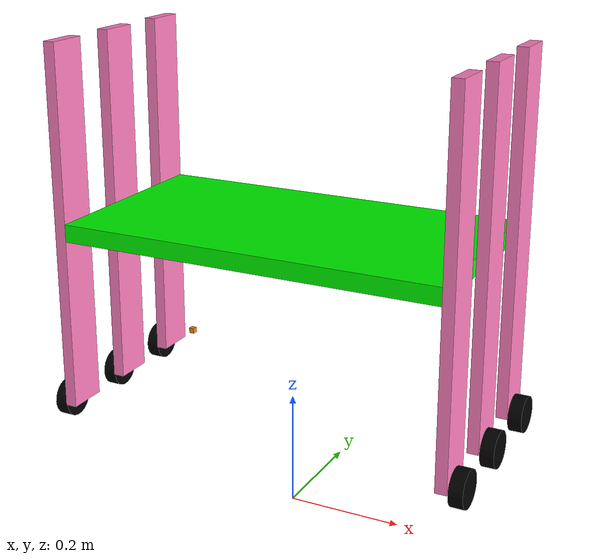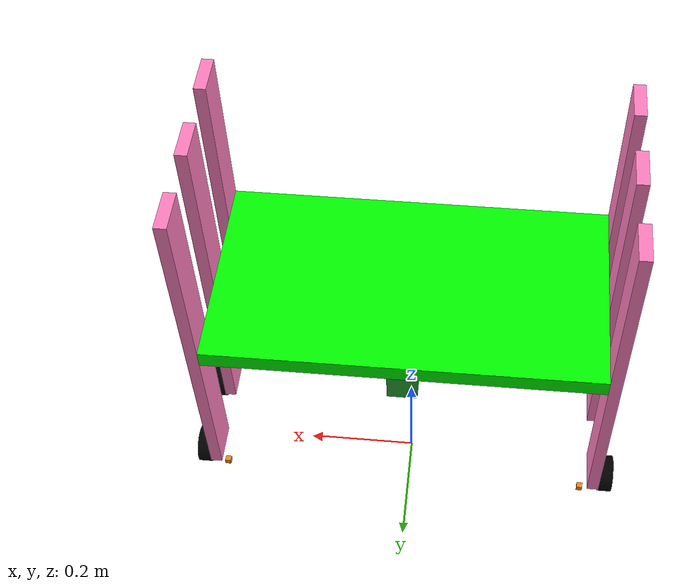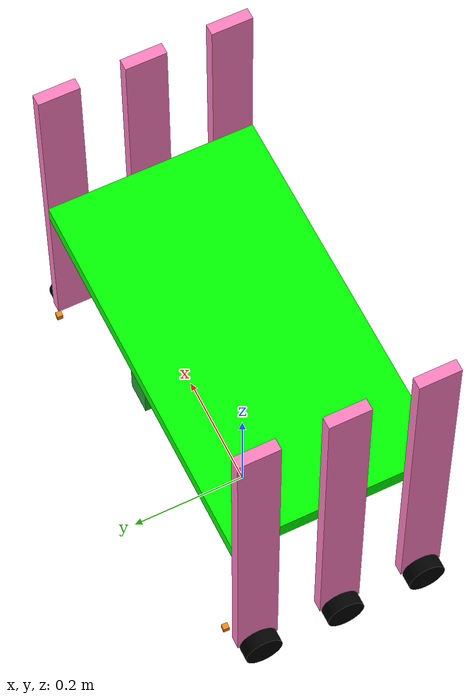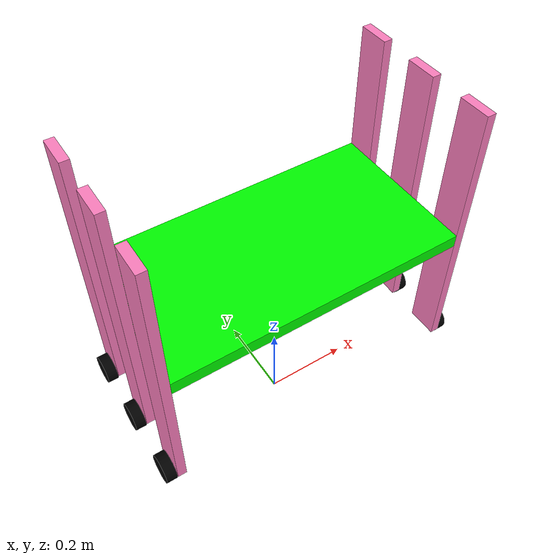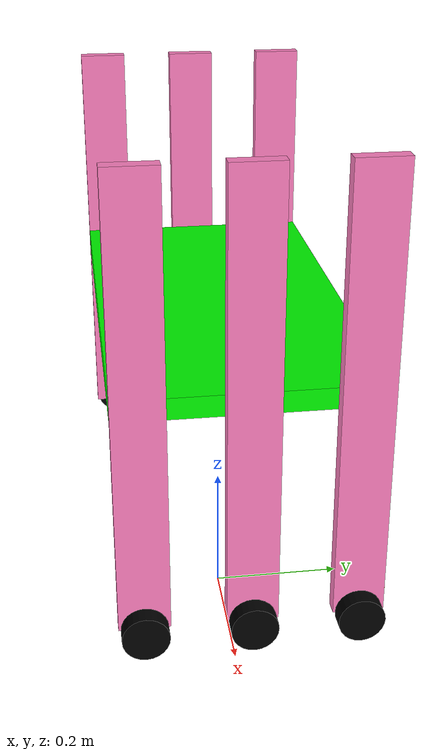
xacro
<?xml version='1.0'?>

<robot name="Rover" xmlns:xacro="http://www.ros.org/wiki/xacro">

  <gazebo>
        <plugin name="gazebo_ros_control" filename="libgazebo_ros_control.so">
        </plugin>
</gazebo>

<link name="world"/>

<link name="base_link">

        <inertial>
	<origin xyz="0 0 0" rpy="0 0 0"/>
            <mass value="19.0"/>
            <inertia ixx=" 0.206625" iyy="0.691125" izz=" 0.8949" ixy="0" ixz="0" iyz="0"/>
        </inertial>

        <collision>
	<origin xyz="0 0 0" rpy="0 0 0"/>
            <geometry>

                <box size="0.66 0.36 0.03"/>
            </geometry>

        </collision>

        <visual>
	<origin xyz="0 0 0" rpy="0 0 0"/>
            <geometry>
                <box size="0.66 0.36 0.03"/>
            </geometry>

            <material name="silver">
                <color rgba="0 1 0 1"/>
            </material>
        </visual>

</link>

<gazebo reference="base_link">
        <material>Gazebo/Green</material>
	<kp>1000000.0</kp>
        <kd>1000000.0</kd>
        <mu1>0.1</mu1>
        <mu2>0.1</mu2>
</gazebo>

<joint name="world_Base_Link" type="prismatic">
    	<parent link="world"/>
    	<child link="base_link"/>
        <origin xyz="0.0 0.0 0.5" rpy="0 0 0"/>
        <limit lower="-100.0" upper="100.0" effort="10.0" velocity="0.5"/>
        <axis xyz="0 1 0"/>
</joint>
<transmission name="tran_world_base_link">
        <type>transmission_interface/SimpleTransmission</type>
       <actuator name="motor1">
          <mechanicalReduction>1</mechanicalReduction>
        </actuator>
        <joint name="world_Base_Link">
          <hardwareInterface>hardware_interface/PositionJointInterface</hardwareInterface>
        </joint>
</transmission>

<link name="leg1">

      <inertial>
	<origin xyz="0.01 0 0" rpy="0 0 0"/>
        <mass value="2.4"/>
        <inertia ixx="0.08036" iyy="0.07946" izz=" 0.00106" ixy="0" ixz="0" iyz="0"/>
      </inertial>

      <collision>
	<origin xyz="0.01 0 0" rpy="0 0 0"/>
        <geometry>
            <box size="0.02 0.07 0.63"/>
        </geometry>

      </collision>

      <visual>
	  <origin xyz="0.01 0 0" rpy="0 0 0"/>
          <geometry>
              <box size="0.02 0.07 0.63"/>
          </geometry>

          <material name="silver">
              <color rgba="1 0.5 0.75 1"/>
          </material>
      </visual>

</link>

<gazebo reference="leg1">
        <material>Gazebo/Red</material>
	<kp>1000000.0</kp>
        <kd>1000000.0</kd>
        <mu1>0.1</mu1>
        <mu2>0.1</mu2>
</gazebo>

<joint name="Base_Link_Leg_1" type="prismatic">
    	<parent link="base_link"/>
    	<child link="leg1"/>
        <origin xyz="0.33 0.145 0" rpy="0 0 0"/>
        <limit lower="-0.35" upper="0.35" effort="10.0" velocity="1.0"/>
        <axis xyz="0 0 1"/>
</joint>

<transmission name="tran1">
        <type>transmission_interface/SimpleTransmission</type>
       <actuator name="motor1">
          <mechanicalReduction>1</mechanicalReduction>
        </actuator>
        <joint name="Base_Link_Leg_1">
          <hardwareInterface>hardware_interface/PositionJointInterface</hardwareInterface>
        </joint>
   </transmission>

<link name="wheel1">

        <inertial>
	<origin xyz="0 0 0.012" rpy="0 0 0"/>
            <mass value="0.21"/>
            <inertia ixx="6.2708e-5" iyy="6.2708e-5" izz="0.000125" ixy="0" ixz="0" iyz="0"/>
        </inertial>
        <collision>
	<origin xyz="0 0 0.012" rpy="0 0 0"/>
            <geometry>
                <cylinder length="0.024" radius="0.032"/>
            </geometry>
        </collision>

        <visual>
	<origin xyz="0 0 0.012" rpy="0 0 0"/>
            <geometry>
                <cylinder length="0.024" radius="0.032"/>
            </geometry>
            <material name="black">
                <color rgba="0 0 0 1"/>
            </material>
        </visual>
</link>

<gazebo reference="wheel1">
        <material>Gazebo/Green</material>
	<kp>1000000.0</kp>
        <kd>1000000.0</kd>
        <mu1>100.0</mu1>
        <mu2>100.0</mu2>
</gazebo>

<joint name="leg1_wheel1" type="continuous">
    	<parent link="leg1"/>
    	<child link="wheel1"/>
    	<origin xyz="0.02 0 -0.315" rpy="0 1.5708 0"/>
        <limit effort="10.0" velocity="10.0"/>
        <axis xyz="0 0 1"/>
</joint>

<transmission name="tran3">
        <type>transmission_interface/SimpleTransmission</type>
        <joint name="leg1_wheel1">
            <hardwareInterface>EffortJointInterface</hardwareInterface>
        </joint>
        <actuator name="motor1">
            <hardwareInterface>EffortJointInterface</hardwareInterface>
            <mechanicalReduction>1</mechanicalReduction>
        </actuator>
</transmission>

<!-- part 22222222222222222 -->

<link name="leg2">

      <inertial>
	<origin xyz="-0.01 0 0" rpy="0 0 0"/>
        <mass value="2.4"/>
        <inertia ixx="0.08036" iyy="0.07946" izz=" 0.00106" ixy="0" ixz="0" iyz="0"/>
      </inertial>

      <collision>
	<origin xyz="-0.01 0 0" rpy="0 0 0"/>
        <geometry>
            <box size="0.02 0.07 0.63"/>
        </geometry>

      </collision>

      <visual>
	  <origin xyz="-0.01 0 0" rpy="0 0 0"/>
          <geometry>
              <box size="0.02 0.07 0.63"/>
          </geometry>

          <material name="silver">
              <color rgba="1 0.5 0.75 1"/>
          </material>
      </visual>

</link>

<gazebo reference="leg2">
        <material>Gazebo/Red</material>
	<kp>1000000.0</kp>
        <kd>1000000.0</kd>
        <mu1>0.1</mu1>
        <mu2>0.1</mu2>
</gazebo>

<joint name="Base_Link_Leg_2" type="prismatic">
    	<parent link="base_link"/>
    	<child link="leg2"/>
        <origin xyz="-0.33 0.145 0" rpy="0 0 0"/>
        <limit lower="-0.35" upper="0.35" effort="10.0" velocity="1.0"/>
        <axis xyz="0 0 1"/>
</joint>

<transmission name="tran2">
        <type>transmission_interface/SimpleTransmission</type>
       <actuator name="motor1">
          <mechanicalReduction>1</mechanicalReduction>
        </actuator>
        <joint name="Base_Link_Leg_2">
          <hardwareInterface>hardware_interface/PositionJointInterface</hardwareInterface>
        </joint>
   </transmission>

<link name="wheel2">

        <inertial>
	<origin xyz="0 0 -0.012" rpy="0 0 0"/>
            <mass value="0.21"/>
            <inertia ixx="6.2708e-5" iyy="6.2708e-5" izz="0.000125" ixy="0" ixz="0" iyz="0"/>
        </inertial>
        <collision>
	<origin xyz="0 0 -0.012" rpy="0 0 0"/>
            <geometry>
                <cylinder length="0.024" radius="0.032"/>
            </geometry>
        </collision>

        <visual>
	<origin xyz="0 0 -0.012" rpy="0 0 0"/>
            <geometry>
                <cylinder length="0.024" radius="0.032"/>
            </geometry>
            <material name="black">
                <color rgba="0 0 0 1"/>
            </material>
        </visual>
</link>

<gazebo reference="wheel2">
        <material>Gazebo/Green</material>
	<kp>1000000.0</kp>
        <kd>1000000.0</kd>
        <mu1>0.1</mu1>
        <mu2>0.1</mu2>
</gazebo>

<joint name="leg2_wheel2" type="continuous">
    	<parent link="leg2"/>
    	<child link="wheel2"/>
    	<origin xyz="-0.02 0 -0.315" rpy="0 1.5708 0"/>
        <limit effort="10.0" velocity="10.0"/>
        <axis xyz="0 0 1"/>
</joint>

<transmission name="tran4">
        <type>transmission_interface/SimpleTransmission</type>
        <joint name="leg2_wheel2">
            <hardwareInterface>EffortJointInterface</hardwareInterface>
        </joint>
        <actuator name="motor1">
            <hardwareInterface>EffortJointInterface</hardwareInterface>
            <mechanicalReduction>1</mechanicalReduction>
        </actuator>
</transmission>

<!-- part 333333333333333 -->
<link name="leg3">

      <inertial>
	<origin xyz="0.01 0 0" rpy="0 0 0"/>
        <mass value="2.4"/>
        <inertia ixx="0.08036" iyy="0.07946" izz=" 0.00106" ixy="0" ixz="0" iyz="0"/>
      </inertial>

      <collision>
	<origin xyz="0.01 0 0" rpy="0 0 0"/>
        <geometry>
            <box size="0.02 0.07 0.63"/>
        </geometry>

      </collision>

      <visual>
	  <origin xyz="0.01 0 0" rpy="0 0 0"/>
          <geometry>
              <box size="0.02 0.07 0.63"/>
          </geometry>

          <material name="silver">
              <color rgba="1 0.5 0.75 1"/>
          </material>
      </visual>

</link>

<gazebo reference="leg3">
        <material>Gazebo/Red</material>
	<kp>1000000.0</kp>
        <kd>1000000.0</kd>
        <mu1>0.1</mu1>
        <mu2>0.1</mu2>
</gazebo>

<joint name="Base_Link_Leg_3" type="prismatic">
    	<parent link="base_link"/>
    	<child link="leg3"/>
        <origin xyz="0.33 0 0" rpy="0 0 0"/>
        <limit lower="-0.35" upper="0.35" effort="10.0" velocity="1.0"/>
        <axis xyz="0 0 1"/>
</joint>

<transmission name="tran33">
        <type>transmission_interface/SimpleTransmission</type>
       <actuator name="motor1">
          <mechanicalReduction>1</mechanicalReduction>
        </actuator>
        <joint name="Base_Link_Leg_3">
          <hardwareInterface>hardware_interface/PositionJointInterface</hardwareInterface>
        </joint>
   </transmission>
<link name="wheel3">

        <inertial>
	<origin xyz="0 0 0.012" rpy="0 0 0"/>
            <mass value="0.21"/>
            <inertia ixx="6.2708e-5" iyy="6.2708e-5" izz="0.000125" ixy="0" ixz="0" iyz="0"/>
        </inertial>
        <collision>
	<origin xyz="0 0 0.012" rpy="0 0 0"/>
            <geometry>
                <cylinder length="0.024" radius="0.032"/>
            </geometry>
        </collision>

        <visual>
	<origin xyz="0 0 0.012" rpy="0 0 0"/>
            <geometry>
                <cylinder length="0.024" radius="0.032"/>
            </geometry>
            <material name="black">
                <color rgba="0 0 0 1"/>
            </material>
        </visual>
</link>

<gazebo reference="wheel3">
        <material>Gazebo/Green</material>
	<kp>1000000.0</kp>
        <kd>1000000.0</kd>
        <mu1>0.1</mu1>
        <mu2>0.1</mu2>
</gazebo>

<joint name="leg3_wheel3" type="continuous">
    	<parent link="leg3"/>
    	<child link="wheel3"/>
    	<origin xyz="0.02 0 -0.315" rpy="0 1.5708 0"/>
        <limit effort="10.0" velocity="10.0"/>
        <axis xyz="0 0 1"/>
</joint>
<!-- part 44444444444444444 -->
<link name="leg4">

      <inertial>
	<origin xyz="-0.01 0 0" rpy="0 0 0"/>
        <mass value="2.4"/>
        <inertia ixx="0.08036" iyy="0.07946" izz=" 0.00106" ixy="0" ixz="0" iyz="0"/>
      </inertial>

      <collision>
	<origin xyz="-0.01 0 0" rpy="0 0 0"/>
        <geometry>
            <box size="0.02 0.07 0.63"/>
        </geometry>

      </collision>

      <visual>
	  <origin xyz="-0.01 0 0" rpy="0 0 0"/>
          <geometry>
              <box size="0.02 0.07 0.63"/>
          </geometry>

          <material name="silver">
              <color rgba="1 0.5 0.75 1"/>
          </material>
      </visual>

</link>

<gazebo reference="leg4">
        <material>Gazebo/Red</material>
	<kp>1000000.0</kp>
        <kd>1000000.0</kd>
        <mu1>0.1</mu1>
        <mu2>0.1</mu2>
</gazebo>

<joint name="Base_Link_Leg_4" type="prismatic">
    	<parent link="base_link"/>
    	<child link="leg4"/>
        <origin xyz="-0.33 0 0" rpy="0 0 0"/>
        <limit lower="-0.35" upper="0.35" effort="10.0" velocity="1.0"/>
        <axis xyz="0 0 1"/>
</joint>

<transmission name="tran44">
        <type>transmission_interface/SimpleTransmission</type>
       <actuator name="motor1">
          <mechanicalReduction>1</mechanicalReduction>
        </actuator>
        <joint name="Base_Link_Leg_4">
          <hardwareInterface>hardware_interface/PositionJointInterface</hardwareInterface>
        </joint>
   </transmission>

<link name="wheel4">

        <inertial>
	<origin xyz="0 0 -0.012" rpy="0 0 0"/>
            <mass value="0.21"/>
            <inertia ixx="6.2708e-5" iyy="6.2708e-5" izz="0.000125" ixy="0" ixz="0" iyz="0"/>
        </inertial>
        <collision>
	<origin xyz="0 0 -0.012" rpy="0 0 0"/>
            <geometry>
                <cylinder length="0.024" radius="0.032"/>
            </geometry>
        </collision>

        <visual>
	<origin xyz="0 0 -0.012" rpy="0 0 0"/>
            <geometry>
                <cylinder length="0.024" radius="0.032"/>
            </geometry>
            <material name="black">
                <color rgba="0 0 0 1"/>
            </material>
        </visual>
</link>

<gazebo reference="wheel4">
        <material>Gazebo/Green</material>
	<kp>1000000.0</kp>
        <kd>1000000.0</kd>
        <mu1>0.1</mu1>
        <mu2>0.1</mu2>
</gazebo>

<joint name="leg4_wheel4" type="continuous">
    	<parent link="leg4"/>
    	<child link="wheel4"/>
    	<origin xyz="-0.02 0 -0.315" rpy="0 1.5708 0"/>
        <limit effort="10.0" velocity="10.0"/>
        <axis xyz="0 0 1"/>
</joint>

<!-- part 55555555 -->
<link name="leg5">

      <inertial>
	<origin xyz="0.01 0 0" rpy="0 0 0"/>
        <mass value="2.4"/>
        <inertia ixx="0.08036" iyy="0.07946" izz=" 0.00106" ixy="0" ixz="0" iyz="0"/>
      </inertial>

      <collision>
	<origin xyz="0.01 0 0" rpy="0 0 0"/>
        <geometry>
            <box size="0.02 0.07 0.63"/>
        </geometry>

      </collision>

      <visual>
	  <origin xyz="0.01 0 0" rpy="0 0 0"/>
          <geometry>
              <box size="0.02 0.07 0.63"/>
          </geometry>

          <material name="silver">
              <color rgba="1 0.5 0.75 1"/>
          </material>
      </visual>

</link>

<gazebo reference="leg5">
        <material>Gazebo/Red</material>
	<kp>1000000.0</kp>
        <kd>1000000.0</kd>
        <mu1>0.1</mu1>
        <mu2>0.1</mu2>
</gazebo>

<joint name="Base_Link_Leg_5" type="prismatic">
    	<parent link="base_link"/>
    	<child link="leg5"/>
        <origin xyz="0.33 -0.145 0" rpy="0 0 0"/>
        <limit lower="-0.35" upper="0.35" effort="10.0" velocity="1.0"/>
        <axis xyz="0 0 1"/>
</joint>

<transmission name="tran55">
        <type>transmission_interface/SimpleTransmission</type>
       <actuator name="motor1">
          <mechanicalReduction>1</mechanicalReduction>
        </actuator>
        <joint name="Base_Link_Leg_5">
          <hardwareInterface>hardware_interface/PositionJointInterface</hardwareInterface>
        </joint>
   </transmission>

<link name="wheel5">

        <inertial>
	<origin xyz="0 0 0.012" rpy="0 0 0"/>
            <mass value="0.21"/>
            <inertia ixx="6.2708e-5" iyy="6.2708e-5" izz="0.000125" ixy="0" ixz="0" iyz="0"/>
        </inertial>
        <collision>
	<origin xyz="0 0 0.012" rpy="0 0 0"/>
            <geometry>
                <cylinder length="0.024" radius="0.032"/>
            </geometry>
        </collision>

        <visual>
	<origin xyz="0 0 0.012" rpy="0 0 0"/>
            <geometry>
                <cylinder length="0.024" radius="0.032"/>
            </geometry>
            <material name="black">
                <color rgba="0 0 0 1"/>
            </material>
        </visual>
</link>

<gazebo reference="wheel5">
        <material>Gazebo/Green</material>
	<kp>1000000.0</kp>
        <kd>1000000.0</kd>
        <mu1>0.1</mu1>
        <mu2>0.1</mu2>
</gazebo>

<joint name="leg5_wheel5" type="continuous">
    	<parent link="leg5"/>
    	<child link="wheel5"/>
    	<origin xyz="0.02 0 -0.315" rpy="0 1.5708 0"/>
        <limit effort="10.0" velocity="10.0"/>
        <axis xyz="0 0 1"/>
</joint>

<transmission name="tran66">
        <type>transmission_interface/SimpleTransmission</type>
       <actuator name="motor1">
          <mechanicalReduction>1</mechanicalReduction>
        </actuator>
        <joint name="Base_Link_Leg_6">
          <hardwareInterface>hardware_interface/PositionJointInterface</hardwareInterface>
        </joint>
   </transmission>

<!-- part 666666666666 -->
<link name="leg6">

      <inertial>
	<origin xyz="-0.01 0 0" rpy="0 0 0"/>
        <mass value="2.4"/>
        <inertia ixx="0.08036" iyy="0.07946" izz=" 0.00106" ixy="0" ixz="0" iyz="0"/>
      </inertial>

      <collision>
	<origin xyz="-0.01 0 0" rpy="0 0 0"/>
        <geometry>
            <box size="0.02 0.07 0.63"/>
        </geometry>

      </collision>

      <visual>
	  <origin xyz="-0.01 0 0" rpy="0 0 0"/>
          <geometry>
              <box size="0.02 0.07 0.63"/>
          </geometry>

          <material name="silver">
              <color rgba="1 0.5 0.75 1"/>
          </material>
      </visual>

</link>

<gazebo reference="leg6">
        <material>Gazebo/Red</material>
	<kp>1000000.0</kp>
        <kd>1000000.0</kd>
        <mu1>0.1</mu1>
        <mu2>0.1</mu2>
</gazebo>

<joint name="Base_Link_Leg_6" type="prismatic">
    	<parent link="base_link"/>
    	<child link="leg6"/>
        <origin xyz="-0.33 -0.145 0" rpy="0 0 0"/>
        <limit lower="-0.35" upper="0.35" effort="10.0" velocity="1.0"/>
        <axis xyz="0 0 1"/>
</joint>
<link name="wheel6">

        <inertial>
	<origin xyz="0 0 -0.012" rpy="0 0 0"/>
            <mass value="0.21"/>
            <inertia ixx="6.2708e-5" iyy="6.2708e-5" izz="0.000125" ixy="0" ixz="0" iyz="0"/>
        </inertial>
        <collision>
	<origin xyz="0 0 -0.012" rpy="0 0 0"/>
            <geometry>
                <cylinder length="0.024" radius="0.032"/>
            </geometry>
        </collision>

        <visual>
	<origin xyz="0 0 -0.012" rpy="0 0 0"/>
            <geometry>
                <cylinder length="0.024" radius="0.032"/>
            </geometry>
            <material name="black">
                <color rgba="0 0 0 1"/>
            </material>
        </visual>
</link>

<gazebo reference="wheel6">
        <material>Gazebo/Green</material>
	<kp>1000000.0</kp>
        <kd>1000000.0</kd>
        <mu1>0.1</mu1>
        <mu2>0.1</mu2>
</gazebo>

<joint name="leg6_wheel6" type="continuous">
    	<parent link="leg6"/>
    	<child link="wheel6"/>
    	<origin xyz="-0.02 0 -0.315" rpy="0 1.5708 0"/>
        <limit effort="10.0" velocity="10.0"/>
        <axis xyz="0 0 1"/>
</joint>

<!-- camera link stair climber -->
    <link name="camera_link">
        <!-- Inertial for gazebo to take it into account, Put 1gr weight -->
        <inertial>
            <origin xyz="0 0 0" rpy="0 0 0"/>
            <mass value="0.001" />
            <inertia ixx="9.1875e-09" ixy="0.0" ixz="0.0" iyy="9.1875e-09" iyz="0.0" izz="1.378125e-08"/>
        </inertial>
		<visual>
            <origin rpy="0.0 0 0" xyz="0 0 0"/>
            <geometry>
                <box size="0.05 0.05 0.05"/>
            </geometry>
            <material name="green"/>
        </visual>
	</link>

    <gazebo reference="camera_link">
        <material>Gazebo/Orange</material>
    </gazebo>

    <joint name="head_camera_joint" type="fixed">
        <parent link="base_link"/>
        <child link="camera_link"/>
        <origin xyz="0 0.155 -0.04" rpy="0 0 0"/>
    </joint>

    <!-- camera -->
  <gazebo reference="camera_link">
    <sensor type="camera" name="camera1">
      <update_rate>10.0</update_rate>
      <camera name="head">

          <pose>0 0 0 0 0 1.57</pose>

        <horizontal_fov>1.3962634</horizontal_fov>
        <image>
          <width>400</width>
          <height>400</height>
          <format>R8G8B8</format>
        </image>
        <clip>
          <near>0.01</near>
          <far>100</far>
        </clip>
        <noise>
          <type>gaussian</type>
          <stddev>0.007</stddev>
        </noise>
      </camera>
      <plugin name="camera_controller" filename="libgazebo_ros_camera.so">
        <alwaysOn>true</alwaysOn>
        <updateRate>0.0</updateRate>
        <cameraName>jibo/camera1</cameraName>
        <imageTopicName>image_raw</imageTopicName>
        <cameraInfoTopicName>camera_info</cameraInfoTopicName>
        <frameName>camera_link</frameName>
        <hackBaseline>0.07</hackBaseline>
        <distortionK1>0.0</distortionK1>
        <distortionK2>0.0</distortionK2>
        <distortionK3>0.0</distortionK3>
        <distortionT1>0.0</distortionT1>
        <distortionT2>0.0</distortionT2>
      </plugin>
    </sensor>
  </gazebo>

<!-- sonar plugin -->

<link name="base_sonar_front">
    <collision>
      <origin xyz="0 0 0" rpy="0 0 0"/>
      <geometry>
        <box size="0.01 0.01 0.01"/>
      </geometry>
    </collision>
    <visual>
      <origin xyz="0 0 0" rpy="0 0 0"/>
      <geometry>
        <box size="0.01 0.01 0.01"/>
      </geometry>
    </visual>
    <inertial>
      <mass value="1e-5" />
      <origin xyz="0 0 0" rpy="0 0 0"/>
      <inertia ixx="1e-6" ixy="0" ixz="0" iyy="1e-6" iyz="0" izz="1e-6" />
    </inertial>
 </link>
 <joint name="sonar_front_joint" type="fixed">
    <axis xyz="0 1 0" />
    <origin rpy="0 0 1.517" xyz="-0.015 0.04 -0.3" />
    <parent link="leg1"/>
    <child link="base_sonar_front"/>
</joint>
<gazebo reference="base_sonar_front">
        <material>Gazebo/Orange</material>
</gazebo>
   <gazebo reference="base_sonar_front">
   <sensor type="ray" name="TeraRanger">
      <pose>0 0 0 0 0 0</pose>
      <visualize>true</visualize>
      <update_rate>50</update_rate>
      <ray>
         <scan>
            <horizontal>
               <samples>10</samples>
               <resolution>1</resolution>
               <min_angle>-0.04</min_angle>
               <max_angle>0.04</max_angle>
            </horizontal>
            <vertical>
               <samples>10</samples>
               <resolution>1</resolution>
               <min_angle>-0.04</min_angle>
               <max_angle>0.04</max_angle>
            </vertical>
         </scan>
         <range>
            <min>0.01</min>
            <max>20</max>
            <resolution>0.02</resolution>
         </range>
      </ray>
      <plugin filename="libgazebo_ros_range.so" name="gazebo_ros_range">
         <gaussianNoise>0.005</gaussianNoise>
         <alwaysOn>true</alwaysOn>
         <updateRate>50</updateRate>
         <topicName>sensor/sonar_front</topicName>
         <frameName>base_sonar_front</frameName>
         <radiation>INFRARED</radiation>
         <fov>0.2967</fov>
      </plugin>
   </sensor>
   </gazebo>

   <!-- sonar plugin 2 -->

<link name="base_sonar_front_2">
    <collision>
      <origin xyz="0 0 0" rpy="0 0 0"/>
      <geometry>
        <box size="0.01 0.01 0.01"/>
      </geometry>
    </collision>
    <visual>
      <origin xyz="0 0 0" rpy="0 0 0"/>
      <geometry>
        <box size="0.01 0.01 0.01"/>
      </geometry>
    </visual>
    <inertial>
      <mass value="1e-5" />
      <origin xyz="0 0 0" rpy="0 0 0"/>
      <inertia ixx="1e-6" ixy="0" ixz="0" iyy="1e-6" iyz="0" izz="1e-6" />
    </inertial>
 </link>
 <joint name="sonar_front_joint_2" type="fixed">
    <axis xyz="0 1 0" />
    <origin rpy="0 0 1.517" xyz="0.015 0.04 -0.3" />
    <parent link="leg2"/>
    <child link="base_sonar_front_2"/>
</joint>
<gazebo reference="base_sonar_front_2">
        <material>Gazebo/Orange</material>
</gazebo>
   <gazebo reference="base_sonar_front_2">
   <sensor type="ray" name="TeraRanger">
      <pose>0 0 0 0 0 0</pose>
      <visualize>true</visualize>
      <update_rate>50</update_rate>
      <ray>
         <scan>
            <horizontal>
               <samples>10</samples>
               <resolution>1</resolution>
               <min_angle>-0.04</min_angle>
               <max_angle>0.04</max_angle>
            </horizontal>
            <vertical>
               <samples>10</samples>
               <resolution>1</resolution>
               <min_angle>-0.04</min_angle>
               <max_angle>0.04</max_angle>
            </vertical>
         </scan>
         <range>
            <min>0.01</min>
            <max>20</max>
            <resolution>0.02</resolution>
         </range>
      </ray>
      <plugin filename="libgazebo_ros_range.so" name="gazebo_ros_range">
         <gaussianNoise>0.005</gaussianNoise>
         <alwaysOn>true</alwaysOn>
         <updateRate>50</updateRate>
         <topicName>sensor/sonar_front_2</topicName>
         <frameName>base_sonar_front_2</frameName>
         <radiation>INFRARED</radiation>
         <fov>0.2967</fov>
      </plugin>
   </sensor>
   </gazebo>
</robot>
